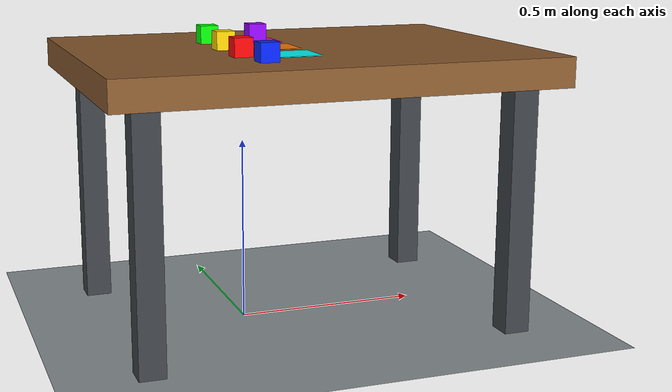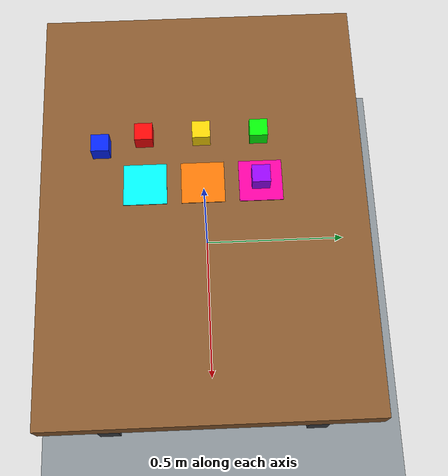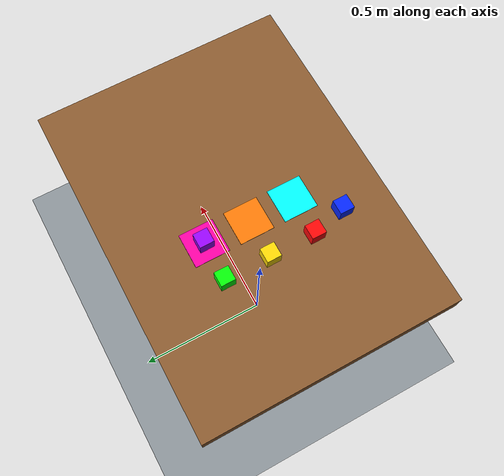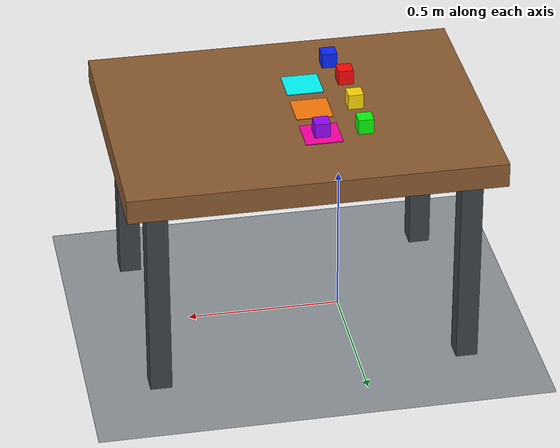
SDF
<?xml version="1.0" ?>
<sdf version="1.8">
  <world name="pick_place">
    <physics name="1ms" type="ignored">
      <!-- 500 Hz matches the ros2_control update period and avoids flooding
           RViz with a 1 kHz clock while the Gazebo GUI is rendering. -->
      <max_step_size>0.002</max_step_size>
      <real_time_factor>0.5</real_time_factor>
    </physics>

    <plugin filename="ignition-gazebo-physics-system" name="gz::sim::systems::Physics"/>
    <plugin filename="ignition-gazebo-user-commands-system" name="gz::sim::systems::UserCommands"/>
    <plugin filename="ignition-gazebo-scene-broadcaster-system" name="gz::sim::systems::SceneBroadcaster"/>
    <plugin filename="ignition-gazebo-contact-system" name="gz::sim::systems::Contact"/>
    <plugin filename="ignition-gazebo-sensors-system" name="ignition::gazebo::systems::Sensors">
      <render_engine>ogre2</render_engine>
    </plugin>
    <model name="table_camera">
      <static>true</static>
      <pose>0.55 0 1.55 0 0.95 3.141592653589793</pose>
      <link name="camera_link">
        <sensor name="rgbd" type="rgbd_camera">
          <always_on>true</always_on><update_rate>10</update_rate>
          <topic>/hri_camera</topic>
          <camera>
            <horizontal_fov>1.15</horizontal_fov>
            <image><width>800</width><height>600</height><format>R8G8B8</format></image>
            <clip><near>0.05</near><far>3.0</far></clip>
          </camera>
        </sensor>
      </link>
    </model>

    <scene>
      <ambient>0.65 0.65 0.65 1</ambient>
      <background>0.82 0.86 0.90 1</background>
      <shadows>true</shadows>
    </scene>

    <light type="directional" name="sun">
      <cast_shadows>true</cast_shadows>
      <pose>0 0 10 0 0 0</pose>
      <diffuse>0.9 0.9 0.9 1</diffuse>
      <specular>0.2 0.2 0.2 1</specular>
      <direction>-0.5 0.2 -0.9</direction>
    </light>

    <model name="ground_plane">
      <static>true</static>
      <link name="ground_link">
        <collision name="ground_collision">
          <geometry><plane><normal>0 0 1</normal><size>10 10</size></plane></geometry>
        </collision>
        <visual name="ground_visual">
          <geometry><plane><normal>0 0 1</normal><size>10 10</size></plane></geometry>
          <material>
            <ambient>0.45 0.48 0.50 1</ambient>
            <diffuse>0.55 0.58 0.60 1</diffuse>
          </material>
        </visual>
      </link>
    </model>

    <!-- Table top: 1.20 x 0.90 m; working surface at z=0.75 m. -->
    <model name="work_table">
      <static>true</static>
      <pose>0.15 0 0 0 0 0</pose>
      <link name="table_link">
        <collision name="top_collision">
          <pose>0 0 0.71 0 0 0</pose>
          <geometry><box><size>1.20 0.90 0.08</size></box></geometry>
        </collision>
        <visual name="top_visual">
          <pose>0 0 0.71 0 0 0</pose>
          <geometry><box><size>1.20 0.90 0.08</size></box></geometry>
          <material>
            <ambient>0.34 0.22 0.12 1</ambient>
            <diffuse>0.55 0.36 0.19 1</diffuse>
            <specular>0.08 0.08 0.08 1</specular>
          </material>
        </visual>

        <collision name="leg_front_left_collision">
          <pose>-0.50 -0.35 0.35 0 0 0</pose>
          <geometry><box><size>0.07 0.07 0.70</size></box></geometry>
        </collision>
        <visual name="leg_front_left_visual">
          <pose>-0.50 -0.35 0.35 0 0 0</pose>
          <geometry><box><size>0.07 0.07 0.70</size></box></geometry>
          <material><ambient>0.15 0.16 0.17 1</ambient><diffuse>0.24 0.26 0.28 1</diffuse></material>
        </visual>

        <collision name="leg_front_right_collision">
          <pose>-0.50 0.35 0.35 0 0 0</pose>
          <geometry><box><size>0.07 0.07 0.70</size></box></geometry>
        </collision>
        <visual name="leg_front_right_visual">
          <pose>-0.50 0.35 0.35 0 0 0</pose>
          <geometry><box><size>0.07 0.07 0.70</size></box></geometry>
          <material><ambient>0.15 0.16 0.17 1</ambient><diffuse>0.24 0.26 0.28 1</diffuse></material>
        </visual>

        <collision name="leg_back_left_collision">
          <pose>0.50 -0.35 0.35 0 0 0</pose>
          <geometry><box><size>0.07 0.07 0.70</size></box></geometry>
        </collision>
        <visual name="leg_back_left_visual">
          <pose>0.50 -0.35 0.35 0 0 0</pose>
          <geometry><box><size>0.07 0.07 0.70</size></box></geometry>
          <material><ambient>0.15 0.16 0.17 1</ambient><diffuse>0.24 0.26 0.28 1</diffuse></material>
        </visual>

        <collision name="leg_back_right_collision">
          <pose>0.50 0.35 0.35 0 0 0</pose>
          <geometry><box><size>0.07 0.07 0.70</size></box></geometry>
        </collision>
        <visual name="leg_back_right_visual">
          <pose>0.50 0.35 0.35 0 0 0</pose>
          <geometry><box><size>0.07 0.07 0.70</size></box></geometry>
          <material><ambient>0.15 0.16 0.17 1</ambient><diffuse>0.24 0.26 0.28 1</diffuse></material>
        </visual>
      </link>
    </model>

    <!-- Dynamic 50 mm cubes. Gazebo contact and friction provide the grasp;
         MoveIt mirrors the object only for planning-scene collision checks. -->
    <model name="red_cube">
      <static>false</static>
      <pose>-0.05 -0.16 0.775 0 0 0</pose>
      <link name="red_cube_link">
        <inertial><mass>0.10</mass><inertia><ixx>0.0000417</ixx><iyy>0.0000417</iyy><izz>0.0000417</izz></inertia></inertial>
        <collision name="collision">
          <geometry><box><size>0.05 0.05 0.05</size></box></geometry>
          <surface><friction><ode><mu>2.0</mu><mu2>2.0</mu2></ode></friction></surface>
        </collision>
        <visual name="visual">
          <geometry><box><size>0.05 0.05 0.05</size></box></geometry>
          <material><ambient>0.8 0.02 0.02 1</ambient><diffuse>1 0.03 0.03 1</diffuse></material>
        </visual>
      </link>
    </model>

    <model name="yellow_cube">
      <static>false</static>
      <pose>-0.05 0 0.775 0 0 0</pose>
      <link name="yellow_cube_link">
        <inertial><mass>0.10</mass><inertia><ixx>0.0000417</ixx><iyy>0.0000417</iyy><izz>0.0000417</izz></inertia></inertial>
        <collision name="collision">
          <geometry><box><size>0.05 0.05 0.05</size></box></geometry>
          <surface><friction><ode><mu>2.0</mu><mu2>2.0</mu2></ode></friction></surface>
        </collision>
        <visual name="visual">
          <geometry><box><size>0.05 0.05 0.05</size></box></geometry>
          <material><ambient>0.8 0.65 0.01 1</ambient><diffuse>1 0.85 0.02 1</diffuse></material>
        </visual>
      </link>
    </model>

    <model name="blue_cube">
      <static>false</static>
      <pose>-0.02 -0.28 0.775 0 0 0</pose>
      <link name="blue_cube_link">
        <inertial><mass>0.10</mass><inertia><ixx>0.0000417</ixx><iyy>0.0000417</iyy><izz>0.0000417</izz></inertia></inertial>
        <collision name="collision">
          <geometry><box><size>0.05 0.05 0.05</size></box></geometry>
          <surface><friction><ode><mu>2.0</mu><mu2>2.0</mu2></ode></friction></surface>
        </collision>
        <visual name="visual">
          <geometry><box><size>0.05 0.05 0.05</size></box></geometry>
          <material><ambient>0.01 0.08 0.75 1</ambient><diffuse>0.02 0.15 1 1</diffuse></material>
        </visual>
      </link>
    </model>

    <!-- Visual-only target zones; no collision, so cubes rest directly on the table. -->
    <model name="zone_a">
      <static>true</static>
      <pose>0.09 -0.16 0.751 0 0 0</pose>
      <link name="zone_a_link">
        <visual name="zone_a_visual">
          <geometry><box><size>0.12 0.12 0.002</size></box></geometry>
          <material><ambient>0 0.8 0.8 1</ambient><diffuse>0 1 1 1</diffuse></material>
        </visual>
      </link>
    </model>

    <model name="zone_b">
      <static>true</static>
      <pose>0.09 0 0.751 0 0 0</pose>
      <link name="zone_b_link">
        <visual name="zone_b_visual">
          <geometry><box><size>0.12 0.12 0.002</size></box></geometry>
          <material><ambient>0.95 0.35 0.02 1</ambient><diffuse>1 0.48 0.03 1</diffuse></material>
        </visual>
      </link>
    </model>

    <model name="zone_c">
      <static>true</static>
      <pose>0.09 0.16 0.751 0 0 0</pose>
      <link name="zone_c_link">
        <visual name="zone_c_visual">
          <geometry><box><size>0.12 0.12 0.002</size></box></geometry>
          <material><ambient>0.8 0 0.5 1</ambient><diffuse>1 0 0.65 1</diffuse></material>
        </visual>
      </link>
    </model>
    <model name="green_cube">
      <pose>-0.05 0.16 0.775 0 0 0</pose>
      <link name="green_cube_link">
        <inertial><mass>0.10</mass><inertia><ixx>0.0000417</ixx><iyy>0.0000417</iyy><izz>0.0000417</izz></inertia></inertial>
        <collision name="collision"><geometry><box><size>0.05 0.05 0.05</size></box></geometry><surface><friction><ode><mu>2</mu><mu2>2</mu2></ode></friction></surface></collision>
        <visual name="visual"><geometry><box><size>0.05 0.05 0.05</size></box></geometry><material><ambient>0.01 0.8 0.02 1</ambient><diffuse>0.02 1 0.03 1</diffuse></material></visual>
      </link>
    </model>
    <model name="purple_cube">
      <pose>0.09 0.16 0.775 0 0 0</pose>
      <link name="purple_cube_link">
        <inertial><mass>0.10</mass><inertia><ixx>0.0000417</ixx><iyy>0.0000417</iyy><izz>0.0000417</izz></inertia></inertial>
        <collision name="collision"><geometry><box><size>0.05 0.05 0.05</size></box></geometry><surface><friction><ode><mu>2</mu><mu2>2</mu2></ode></friction></surface></collision>
        <visual name="visual"><geometry><box><size>0.05 0.05 0.05</size></box></geometry><material><ambient>0.5 0.01 0.8 1</ambient><diffuse>0.6 0.02 1 1</diffuse></material></visual>
      </link>
    </model>
  </world>
</sdf>
